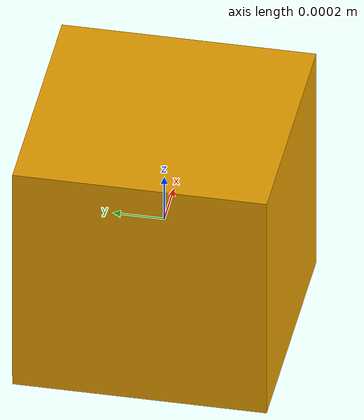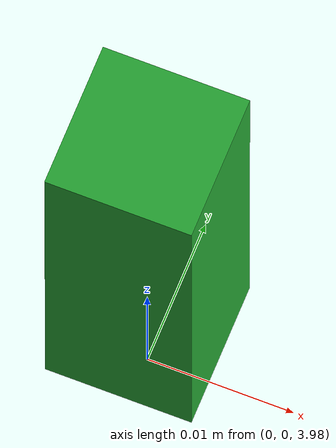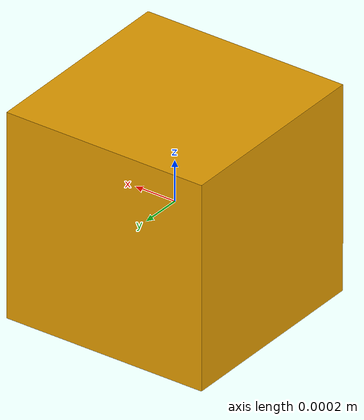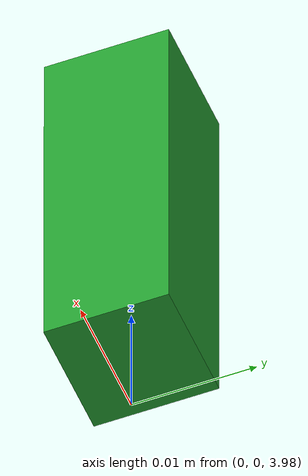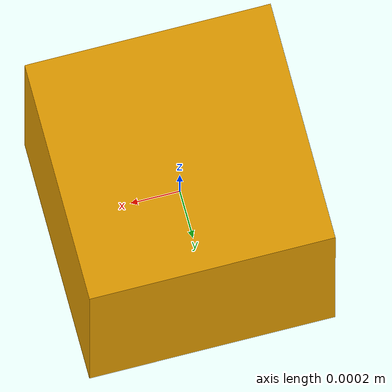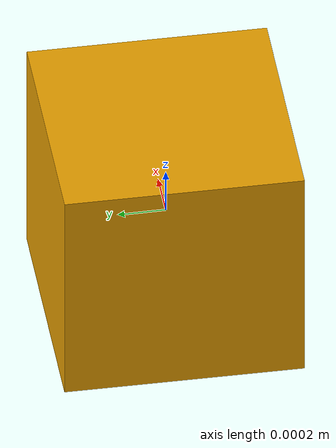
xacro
<?xml version="1.0"?>
<robot name="godeye_perspective2_base" xmlns:xacro="http://www.ros.org/wiki/xacro">

  <!-- Included URDF/XACRO Files -->
  <xacro:include filename="$(find sim_environment)/urdf/camera_macro.xacro" />

  <!-- PROPERTY LIST -->
  <!--All units in m-kg-s-radians unit system -->
  <property name="M_PI" value="3.1415926535897931" />

  <!-- Main Body-base -->
  <property name="base_x_size" value="0.01" />
  <property name="base_y_size" value="0.01" />
  <property name="base_z_size" value="0.01" />
  <property name="base_mass" value="1000" /> <!-- in kg-->

  <!--Inertial macros for the box and cylinder. Units are kg*m^2-->
  <macro name="box_inertia" params="m x y z">
    <inertia  ixx="${m*(y*y+z*z)/12}" ixy = "0" ixz = "0"
              iyy="${m*(x*x+z*z)/12}" iyz = "0"
              izz="${m*(x*x+z*z)/12}" />
  </macro>

  <macro name="cylinder_inertia" params="m r h">
    <inertia  ixx="${m*(3*r*r+h*h)/12}" ixy = "0" ixz = "0"
              iyy="${m*(3*r*r+h*h)/12}" iyz = "0"
              izz="${m*r*r/2}" />
  </macro>
  <!-- BASE-FOOTPRINT -->
  <!-- base_footprint is a fictitious link(frame) that is on the ground right below base_link origin -->
  <link name="base_footprint">
    <visual>
        <origin xyz="0 0 0" rpy="0 0 0" />
        <geometry>
            <box size="0.001 0.001 0.001" />
        </geometry>
    </visual>
  </link>

  <gazebo reference="base_footprint">
    <turnGravityOff>false</turnGravityOff>
    <static>true</static>
  </gazebo>

  <!-- BASE-LINK -->
  <!--Actual body/chassis of the robot-->
  <link name="base_link">
    <inertial>
      <mass value="${base_mass}" />
      <origin xyz="0 0 0" />
      <!--The 3x3 rotational inertia matrix. -->
      <box_inertia  m="${base_mass}" x="${base_x_size}" y="${base_y_size}" z="${base_z_size}"/>
    </inertial>
    <collision>
      <origin xyz="0 0 0" rpy="0 0 0 " />
      <geometry>
        <box size="${base_x_size} ${base_y_size} ${base_z_size}"/>
      </geometry>
    </collision>
  </link>
  <gazebo reference="base_link">
    <turnGravityOff>true</turnGravityOff>
  </gazebo>

  <joint name="base_footprint_joint" type="fixed">
    <origin xyz="0 0 0" rpy="0 1.5708 0" />
    <parent link="base_footprint"/>
    <child link="base_link" />
  </joint>

  <!-- camera -->
  <camera_macro_perspective_720x480 parent="base_link" prefix="godeye_camera_perspective" xyz="-4.0 0.0 0" x_rot="0" y_rot="-160" z_rot="-41"/>

  <gazebo>
    <plugin name="gazebo_ros_control" filename="libgazebo_ros_control.so" />
  </gazebo>

</robot>

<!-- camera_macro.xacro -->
<robot name="wheel_robot" xmlns:xacro="http://ros.org/wiki/xacro">
  <xacro:macro name="camera_macro" params="parent prefix xyz">
    <joint name="${prefix}_joint" type="fixed">
      <parent link="${parent}"/>
      <child  link="${prefix}_link"/>
      <origin xyz="${xyz}" rpy="${radians(-90)} 0 ${radians(-90)}"/>
    </joint>
    <link name="${prefix}_link">
      <visual>
        <origin xyz="0 0 0" rpy="0 0 0" />
        <geometry>
          <box size="0.01 0.01 0.03" />
        </geometry>
        <material name="Green" />
      </visual>
    </link>
    <gazebo reference="${prefix}_link">
      <sensor type="camera" name="${prefix}">
        <update_rate>10.0</update_rate>
        <camera name="${prefix}">
          <pose>0 0 0 0 ${radians(-90)} ${radians(90)}</pose>
          <horizontal_fov>2</horizontal_fov>
          <image>
            <width>320</width>
            <height>240</height>
            <format>R8G8B8</format>
          </image>
          <clip>
            <near>0.02</near>
            <far>300</far>
          </clip>
          <noise>
            <type>gaussian</type>
            <mean>0.0</mean>
            <stddev>0.007</stddev>
          </noise>
        </camera>
        <plugin name="camera_controller" filename="libgazebo_ros_camera.so">
          <alwaysOn>true</alwaysOn>
          <updateRate>0.0</updateRate>
          <cameraName>${prefix}</cameraName>
          <imageTopicName>image_raw</imageTopicName>
          <cameraInfoTopicName>camera_info</cameraInfoTopicName>
          <frameName>${prefix}_link</frameName>
          <hackBaseline>0.0</hackBaseline>
          <distortionK1>0.0</distortionK1>
          <distortionK2>0.0</distortionK2>
          <distortionK3>0.0</distortionK3>
          <distortionT1>0.0</distortionT1>
          <distortionT2>0.0</distortionT2>
        </plugin>
      </sensor>
    </gazebo>
  </xacro:macro>

  <xacro:macro name="camera_macro_640x480" params="parent prefix xyz">
    <joint name="${prefix}_joint" type="fixed">
      <parent link="${parent}"/>
      <child  link="${prefix}_link"/>
      <origin xyz="${xyz}" rpy="${radians(-90)} 0 ${radians(-90)}"/>
    </joint>
    <link name="${prefix}_link">
      <visual>
        <origin xyz="0 0 0" rpy="0 0 0" />
        <geometry>
          <box size="0.01 0.01 0.03" />
        </geometry>
        <material name="Green" />
      </visual>
    </link>
    <gazebo reference="${prefix}_link">
      <sensor type="camera" name="${prefix}">
        <update_rate>10.0</update_rate>
        <camera name="${prefix}">
          <pose>0 0 0 0 ${radians(-90)} ${radians(90)}</pose>
          <horizontal_fov>2</horizontal_fov>
          <image>
            <width>640</width>
            <height>480</height>
            <format>R8G8B8</format>
          </image>
          <clip>
            <near>0.02</near>
            <far>300</far>
          </clip>
          <noise>
            <type>gaussian</type>
            <mean>0.0</mean>
            <stddev>0.007</stddev>
          </noise>
        </camera>
        <plugin name="camera_controller" filename="libgazebo_ros_camera.so">
          <alwaysOn>true</alwaysOn>
          <updateRate>0.0</updateRate>
          <cameraName>${prefix}</cameraName>
          <imageTopicName>image_raw</imageTopicName>
          <cameraInfoTopicName>camera_info</cameraInfoTopicName>
          <frameName>${prefix}_link</frameName>
          <hackBaseline>0.0</hackBaseline>
          <distortionK1>0.0</distortionK1>
          <distortionK2>0.0</distortionK2>
          <distortionK3>0.0</distortionK3>
          <distortionT1>0.0</distortionT1>
          <distortionT2>0.0</distortionT2>
        </plugin>
      </sensor>
    </gazebo>
  </xacro:macro>

  <xacro:macro name="camera_macro_perspective_720x480" params="parent prefix xyz x_rot y_rot z_rot">
    <joint name="${prefix}_joint" type="fixed">
      <parent link="${parent}"/>
      <child  link="${prefix}_link"/>
      <origin xyz="${xyz}" rpy="${radians(-90)} 0 ${radians(-90)}"/>
    </joint>
    <link name="${prefix}_link">
      <visual>
        <origin xyz="0 0 0" rpy="0 0 0" />
        <geometry>
          <box size="0.01 0.01 0.03" />
        </geometry>
        <material name="Green" />
      </visual>
    </link>
    <gazebo reference="${prefix}_link">
      <sensor type="camera" name="${prefix}">
        <update_rate>10.0</update_rate>
        <camera name="${prefix}">
          <pose>0 0 0 ${radians(x_rot)} ${radians(y_rot)} ${radians(z_rot)}"</pose>
          <horizontal_fov>1.4</horizontal_fov>
          <image>
            <width>720</width>
            <height>480</height>
            <format>R8G8B8</format>
          </image>
          <clip>
            <near>0.02</near><!--default 0.02-->
            <far>50</far>
          </clip>
          <noise>
            <type>gaussian</type>
            <mean>0.0</mean>
            <stddev>0.007</stddev>
          </noise>
        </camera>
        <plugin name="camera_controller" filename="libgazebo_ros_camera.so">
          <alwaysOn>true</alwaysOn>
          <updateRate>0.0</updateRate>
          <cameraName>${prefix}</cameraName>
          <imageTopicName>image_raw</imageTopicName>
          <cameraInfoTopicName>camera_info</cameraInfoTopicName>
          <frameName>${prefix}_link</frameName>
          <hackBaseline>0.0</hackBaseline>
          <distortionK1>0.0</distortionK1>
          <distortionK2>0.0</distortionK2>
          <distortionK3>0.0</distortionK3>
          <distortionT1>0.0</distortionT1>
          <distortionT2>0.0</distortionT2>
        </plugin>
      </sensor>
    </gazebo>
  </xacro:macro>

  <xacro:macro name="camera_macro_perspective2_720x480" params="parent prefix xyz x_rot y_rot z_rot">
    <joint name="${prefix}_joint" type="fixed">
      <parent link="${parent}"/>
      <child  link="${prefix}_link"/>
      <origin xyz="${xyz}" rpy="${radians(-90)} 0 ${radians(-90)}"/>
    </joint>
    <link name="${prefix}_link">
      <visual>
        <origin xyz="0 0 0" rpy="0 0 0" />
        <geometry>
          <box size="0.01 0.01 0.03" />
        </geometry>
        <material name="Green" />
      </visual>
    </link>
    <gazebo reference="${prefix}_link">
      <sensor type="camera" name="${prefix}">
        <update_rate>10.0</update_rate>
        <camera name="${prefix}">
          <pose>0 0 0 ${radians(x_rot)} ${radians(y_rot)} ${radians(z_rot)}"</pose>
          <horizontal_fov>0.9</horizontal_fov>
          <image>
            <width>720</width>
            <height>480</height>
            <format>R8G8B8</format>
          </image>
          <clip>
            <near>0.02</near><!--default 0.02-->
            <far>50</far>
          </clip>
          <noise>
            <type>gaussian</type>
            <mean>0.0</mean>
            <stddev>0.007</stddev>
          </noise>
        </camera>
        <plugin name="camera_controller" filename="libgazebo_ros_camera.so">
          <alwaysOn>true</alwaysOn>
          <updateRate>0.0</updateRate>
          <cameraName>${prefix}</cameraName>
          <imageTopicName>image_raw</imageTopicName>
          <cameraInfoTopicName>camera_info</cameraInfoTopicName>
          <frameName>${prefix}_link</frameName>
          <hackBaseline>0.0</hackBaseline>
          <distortionK1>0.0</distortionK1>
          <distortionK2>0.0</distortionK2>
          <distortionK3>0.0</distortionK3>
          <distortionT1>0.0</distortionT1>
          <distortionT2>0.0</distortionT2>
        </plugin>
      </sensor>
    </gazebo>
  </xacro:macro>
</robot>
